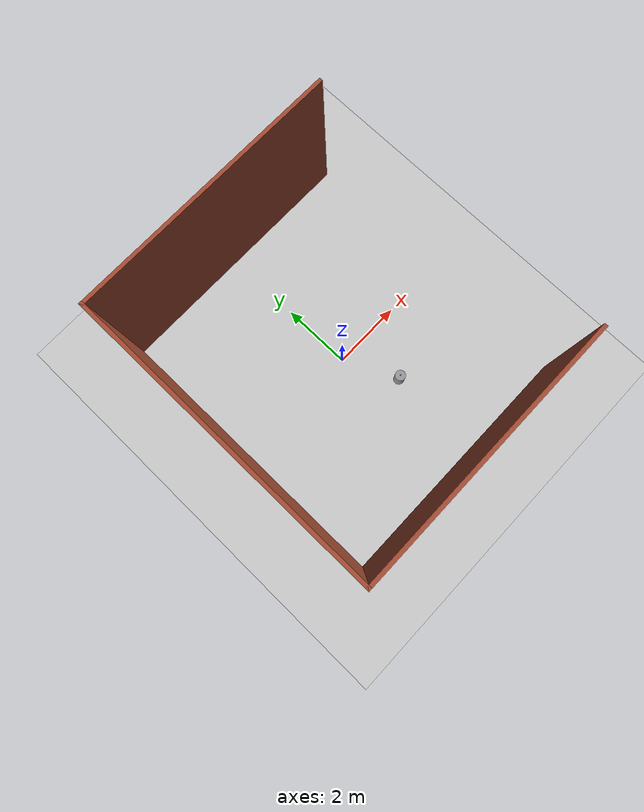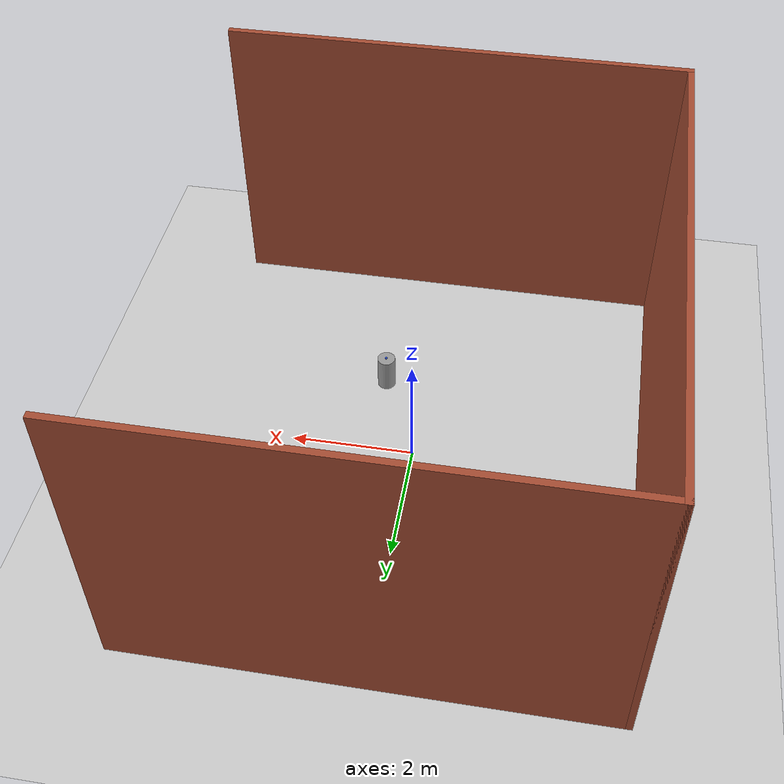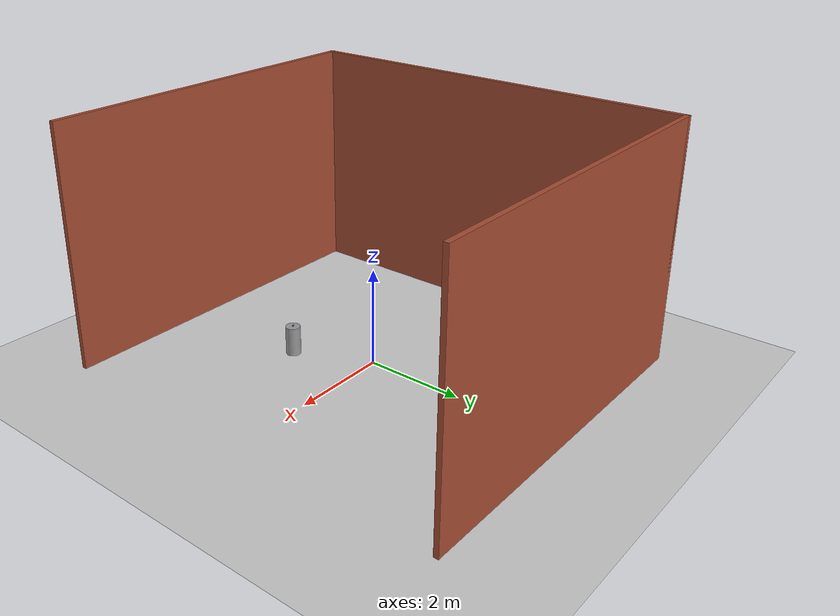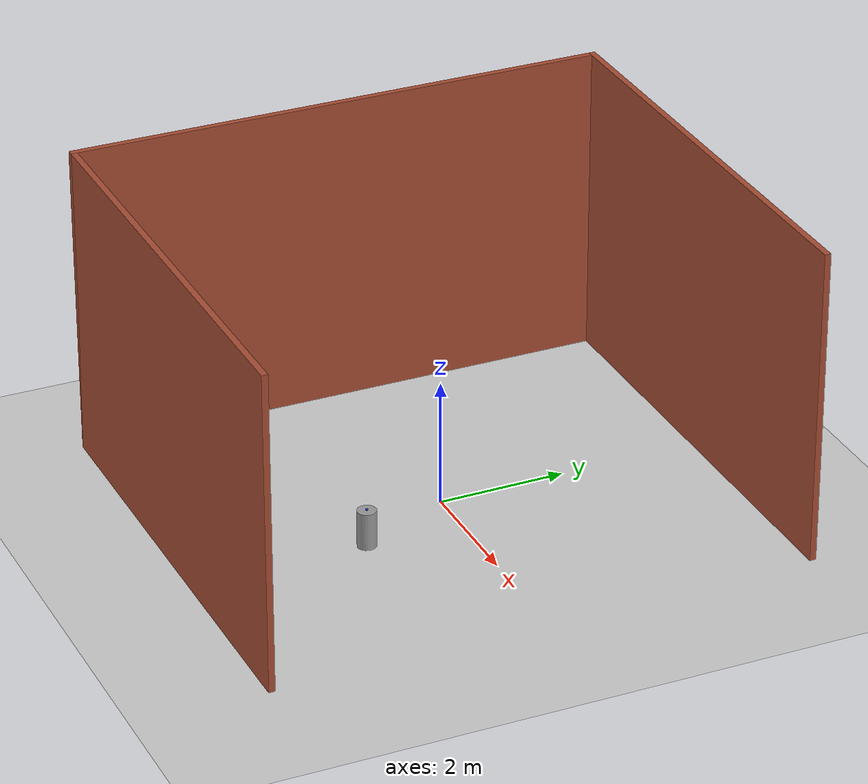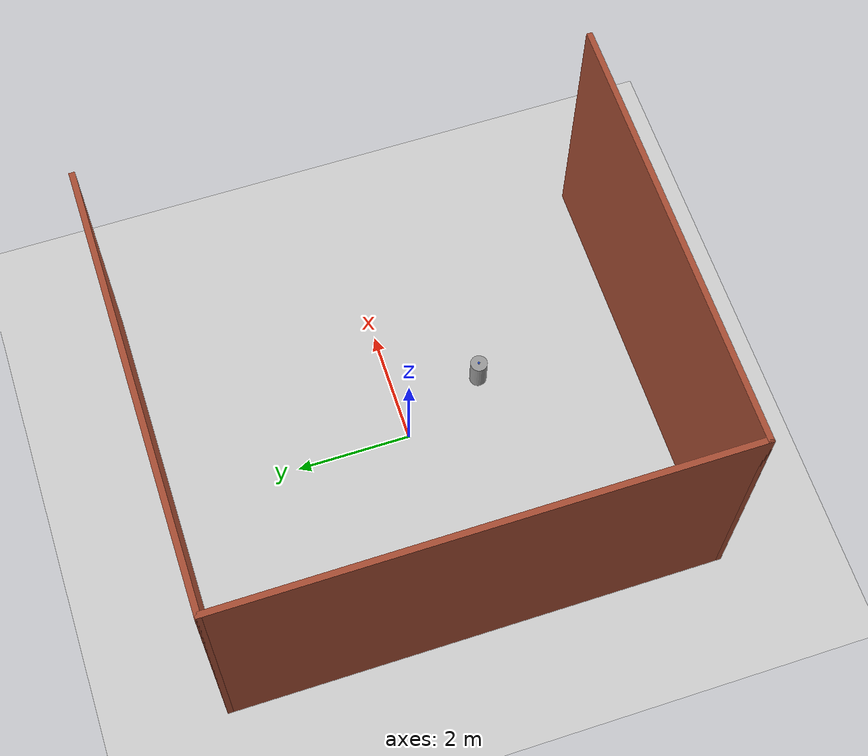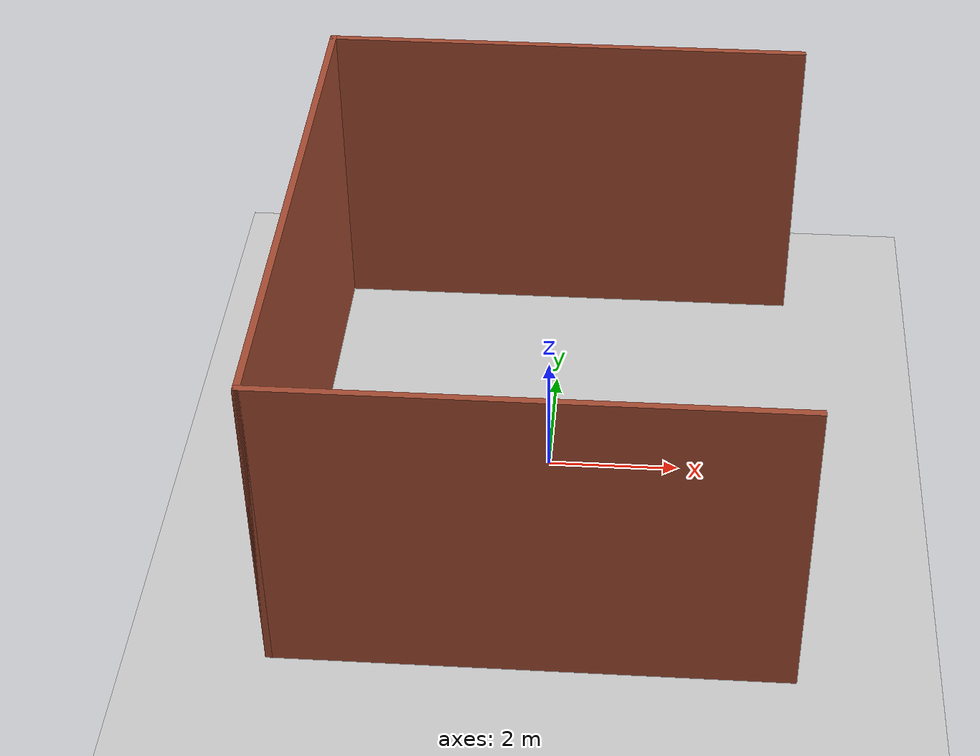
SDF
<sdf version="1.5">
 <world name="default">
  <include><uri>model://sun</uri></include>
  <model name="ground_plane">
   <static>1</static>
   <link name="link">
    <collision name="collision">
     <geometry><plane><normal>0 0 1</normal><size>7.5 8.6</size></plane></geometry>
     <surface><friction><ode><mu>100</mu><mu2>50</mu2></ode></friction></surface>
    </collision>
    <visual name="visual">
     <cast_shadows>0</cast_shadows>
     <geometry><plane><normal>0 0 1</normal><size>7.5 8.6</size></plane></geometry>
     <material>
      <script><uri>file://media/materials/scripts/gazebo.material</uri><name>Gazebo/Grey</name></script>
     </material>
    </visual>
   </link>
  </model>
  <model name="Wall">
   <static>1</static>
   <link name="Wall_1">
    <collision name="Wall_1_Collision">
     <pose>-3.7 0 2.5 0 -0 0</pose>
     <geometry><box><size>0.1 8.6 5</size></box></geometry>
    </collision>
    <visual name="Wall_1_Visual">
     <pose>-3.7 0 2.5 0 -0 0</pose>
     <geometry><box><size>0.1 8.6 5</size></box></geometry>
     <material>
      <script><uri>file://media/materials/scripts/gazebo.material</uri><name>Gazebo/Bricks</name></script>
     </material>
    </visual>
   </link>
   <link name="Wall_2">
    <collision name="Wall_2_Collision">
     <pose>0 4.25 2.5 0 -0 0</pose>
     <geometry><box><size>7.5 0.1 5</size></box></geometry>
    </collision>
    <visual name="Wall_2_Visual">
     <pose>0 4.25 2.5 0 -0 0</pose>
     <geometry><box><size>7.5 0.1 5</size></box></geometry>
     <material>
      <script><uri>file://media/materials/scripts/gazebo.material</uri><name>Gazebo/Bricks</name></script>
     </material>
    </visual>
   </link>
   <link name="Wall_3">
    <collision name="Wall_3_Collision">
     <pose>0 -4.25 2.5 0 -0 0</pose>
     <geometry><box><size>7.5 0.1 5</size></box></geometry>
    </collision>
    <visual name="Wall_3_Visual">
     <pose>0 -4.25 2.5 0 -0 0</pose>
     <geometry><box><size>7.5 0.1 5</size></box></geometry>
     <material>
      <script><uri>file://media/materials/scripts/gazebo.material</uri><name>Gazebo/Bricks</name></script>
     </material>
    </visual>
   </link>
  </model>
  <model name="load cylinder">
   <pose>0.7 -1.5 0.3 0 -0 0</pose>
   <static>1</static>
   <link name="link">
    <inertial>
     <mass>4</mass>
     <inertia>
      <ixx>2.67e-05</ixx>
      <ixy>0</ixy>
      <ixz>0</ixz>
      <iyy>2.67e-05</iyy>
      <iyz>0</iyz>
      <izz>2.67e-05</izz>
     </inertia>
    </inertial>
    <collision name="m_collision">
     <geometry><cylinder><length>0.6</length><radius>0.15</radius></cylinder></geometry>
    </collision>
    <visual name="m_visual">
     <geometry><cylinder><length>0.6</length><radius>0.15</radius></cylinder></geometry>
     <material>
      <script><uri>file://media/materials/scripts/gazebo.material</uri><name>Gazebo/Grey</name></script>
     </material>
    </visual>
   </link>
  </model>
  <model name="payload box">
   <pose>0.7 -1.5 0.6 0 -0 0.785</pose>
   <static>0</static>
   <link name="link">
    <inertial>
     <mass>0.005</mass>
     <inertia>
      <ixx>2.67e-05</ixx>
      <ixy>0</ixy>
      <ixz>0</ixz>
      <iyy>2.67e-05</iyy>
      <iyz>0</iyz>
      <izz>2.67e-05</izz>
     </inertia>
    </inertial>
    <collision name="m_collision">
     <geometry><box><size>0.035 0.035 0.035</size></box></geometry>
     <surface><friction><ode><mu>20</mu><mu2>20</mu2></ode></friction></surface>
    </collision>
    <visual name="m_visual">
     <geometry><box><size>0.035 0.035 0.035</size></box></geometry>
     <material>
      <script><uri>file://media/materials/scripts/gazebo.material</uri><name>Gazebo/Blue</name></script>
     </material>
    </visual>
   </link>
  </model>
  <physics name="default_physics" default="0" type="ode">
   <gravity>0 0 -9.8066</gravity>
   <ode>
    <solver>
     <type>quick</type>
     <iters>10</iters>
     <sor>1.3</sor>
     <use_dynamic_moi_rescaling>0</use_dynamic_moi_rescaling>
    </solver>
    <constraints>
     <cfm>0</cfm>
     <erp>0.2</erp>
     <contact_max_correcting_vel>100</contact_max_correcting_vel>
     <contact_surface_layer>0.001</contact_surface_layer>
    </constraints>
   </ode>
   <max_step_size>0.004</max_step_size>
   <real_time_factor>1</real_time_factor>
   <real_time_update_rate>250</real_time_update_rate>
   <magnetic_field>6.0e-6 2.3e-5 -4.2e-5</magnetic_field>
  </physics>
 </world>
</sdf>
